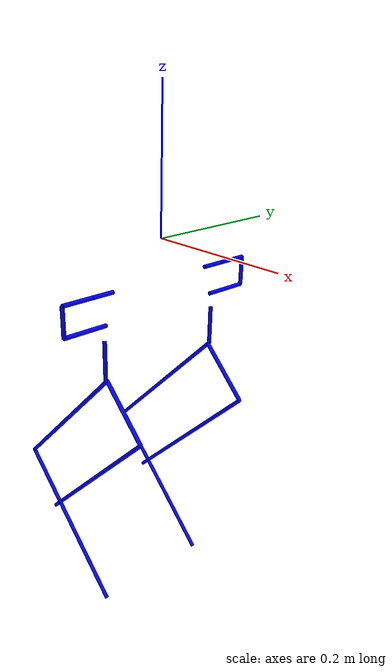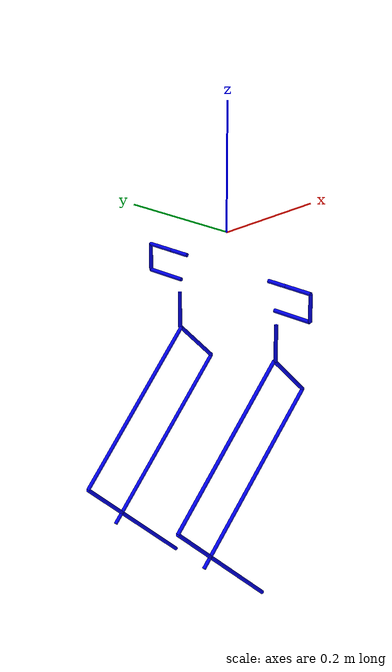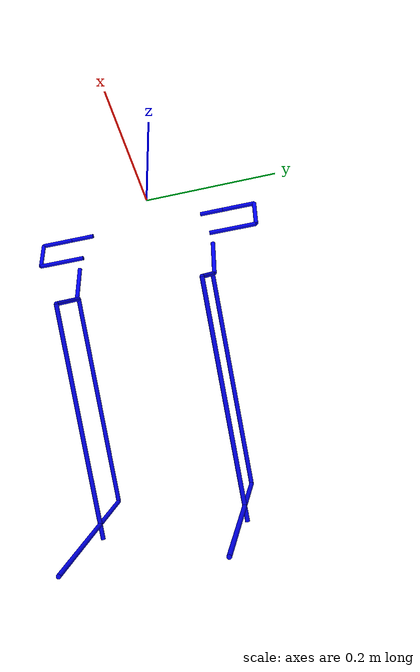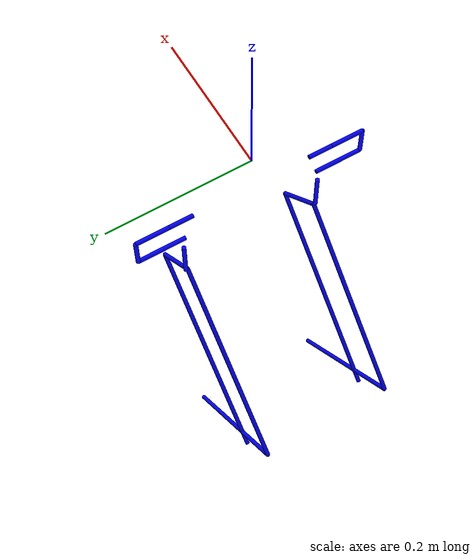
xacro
<?xml version="1.0"?>
<robot name="ALEX" xmlns:xacro="http://ros.org/wiki/xacro">
  <xacro:property name="o_base_to_hip_x" value="0" />
  <xacro:property name="o_base_to_hip_y" value="-0.5" />
  <xacro:property name="o_base_to_hip_z" value="-0.1" />
  <xacro:property name="o_hip_to_knee_x" value="0.1" />
  <xacro:property name="o_hip_to_knee_y" value="0.1" />
  <xacro:property name="o_hip_to_knee_z" value="0.1" />
  <xacro:property name="l_knee_a" value="0.1" />
  <xacro:property name="l_knee_b" value="0.3" />
  <xacro:property name="l_shin_a" value="0.309" />
  <xacro:property name="l_shin_b" value="0.305" />
  <xacro:property name="l_shin_connection" value="0.115" />
  <xacro:property name="l_ankle_connection" value="0.07475" />
  <xacro:property name="l_ankle_a" value="0.02735" />
  <xacro:property name="l_ankle_b" value="0.0432" />
  <xacro:property name="l_ankle_c1" value="0.1493" />
  <xacro:property name="l_ankle_c2" value="0.155795" />
  <xacro:property name="l_foot_a" value="0.055" />
  <xacro:property name="l_foot_b" value="0.055" />

  <!-- Base link to coronal hip -->
  <xacro:property name="l_base_to_sybolic_hip_yz" value="0.101366" />
  <xacro:property name="o_base_to_symbolic_hip_y" value="0.084011" />
  <xacro:property name="o_base_to_symbolic_hip_z" value="-0.056722" />

  <!-- Coronal Hip - Side to Side hip movement -->
  <xacro:property name="l_symbolic_hip_to_coronal_hip_rotor" value="0.0338" />
  <xacro:property name="l_coronal_hip_torque_arm" value="0.046803" />
  <xacro:property name="l_coronal_hip_torque_arm_to_coronal_hip_push_point" value="0.043656" />
  <xacro:property name="l_coronal_hip_push_point_to_coronal_hip_pivot" value="0.067801" />
  <xacro:property name="l_symbolic_hip_to_coronal_hip_pivot" value="0.068139" />
  <xacro:property name="o_symbolic_hip_to_coronal_hip_pivot_z" value="-0.066081" />
  <xacro:property name="o_symbolic_hip_to_coronal_hip_pivot_y" value="0.016618" />
  <xacro:property name="l_coronal_hip_pivot_to_sagittal_hip_pivot" value="0.059613" />
  <xacro:property name="o_coronal_hip_pivot_to_sagittal_hip_pivot_y" value="0.002471" />
  <xacro:property name="o_coronal_hip_pivot_to_sagittal_hip_pivot_z" value="-0.059561" />

  <!-- Sagital Hip - Forward to Back hip movement -->
  <xacro:property name="l_thigh_a" value="0.100" />
  <xacro:property name="l_thigh_b" value="0.300" />
  <xacro:property name="l_shin_a" value="0.3206" />
  <xacro:property name="l_shin_b" value="0.275" />
  <xacro:property name="l_knee_b_to_ankle_connection" value="0.07475" />
  <xacro:property name="l_knee_b_to_shin_connection" value="0.070" />

  <!-- Ankle -->
  <xacro:property name="l_ankle_connection_to_ankle_rotor" value="0.02735" />
  <xacro:property name="l_ankle_torque_arm" value="0.0432" />
  <xacro:property name="l_ankle_linear_actuator_a" value="0.1493" />
  <xacro:property name="l_ankle_linear_actuator_b" value="0.155795" />
  <xacro:property name="l_linear_actuator_b_to_shin_b" value="0.055" />

  <material name="red">
    <color rgba="1 0 0 1"/>
  </material>

  <material name="green">
    <color rgba="0 1 0 1"/>
  </material>

  <material name="blue">
    <color rgba="0 0 1 1"/>
  </material>

  <material name="yellow">
    <color rgba="1 1 0 1"/>
  </material>

  <material name="silver">
    <color rgba="0.73 0.73 0.73 1"/>
  </material>

  <material name="black">
    <color rgba="0 0 0 1"/>
  </material>

  <material name="white">
    <color rgba="1 1 1 1"/>
  </material>

  <xacro:macro name="leg2" params="prefix reflect">
    <!-- HIP -->
    <link name="${prefix}_symbolic_hip_link"/>
    <joint name="base_link_to_${prefix}_symbolic_hip_a" type="continuous">
      <parent link="base_link"/>
      <child link="${prefix}_symbolic_hip_link"/>
      <axis rpy="0 0 0" xyz="0 0 1"/>
      <origin rpy="0 0 0" xyz="0 0 0"/>
    </joint>

    <link name="${prefix}_symbolic_hip_to_coronal_hip_rotor_link">
      <visual>
        <geometry>
          <cylinder length="${l_symbolic_hip_to_coronal_hip_rotor}" radius="0.003"/>
        </geometry>
        <origin rpy="0 ${pi/2} 0" xyz="${l_symbolic_hip_to_coronal_hip_rotor/2} 0 0"/>
        <material name="blue"/>
      </visual>
    </link>
    <joint name="${prefix}_symbolic_hip_to_coronal_hip_rotor" type="continuous">
      <parent link="${prefix}_symbolic_hip_link"/>
      <child link="${prefix}_symbolic_hip_to_coronal_hip_rotor_link"/>
      <axis rpy="0 0 0" xyz="0 0 1"/>
      <origin rpy="${pi/2} 0 ${reflect * pi/2}" xyz="0 ${reflect * o_base_to_symbolic_hip_y} ${o_base_to_symbolic_hip_z}"/>
    </joint>

    <link name="${prefix}_coronal_hip_torque_arm_link">
      <visual>
        <geometry>
          <cylinder length="${l_coronal_hip_torque_arm}" radius="0.003"/>
        </geometry>
        <origin rpy="0 ${pi/2} 0" xyz="${l_coronal_hip_torque_arm/2} 0 0"/>
        <material name="blue"/>
      </visual>
    </link>
    <joint name="${prefix}_coronal_hip_rotor_to_coronal_hip_torque_arm" type="continuous">
      <parent link="${prefix}_symbolic_hip_to_coronal_hip_rotor_link"/>
      <child link="${prefix}_coronal_hip_torque_arm_link"/>
      <axis rpy="0 0 0" xyz="0 0 1"/>
      <origin rpy="0 0 0" xyz="${l_symbolic_hip_to_coronal_hip_rotor} 0 0"/>
    </joint>

    <link name="${prefix}_coronal_hip_pusher_link">
      <visual>
        <geometry>
          <cylinder length="${l_coronal_hip_torque_arm_to_coronal_hip_push_point}" radius="0.003"/>
        </geometry>
        <origin rpy="0 ${pi/2} 0" xyz="${l_coronal_hip_torque_arm_to_coronal_hip_push_point/2} 0 0"/>
        <material name="blue"/>
      </visual>
    </link>
    <joint name="${prefix}_coronal_hip_torque_arm_to_coronal_hip_pusher" type="continuous">
      <parent link="${prefix}_coronal_hip_torque_arm_link"/>
      <child link="${prefix}_coronal_hip_pusher_link"/>
      <axis rpy="0 0 0" xyz="0 0 1"/>
      <origin rpy="0 0 ${-pi/2}" xyz="${l_coronal_hip_torque_arm} 0 0"/>
    </joint>

    <link name="${prefix}_coronal_hip_pusher_to_coronal_hip_pivot_link">
      <visual>
        <geometry>
          <cylinder length="${l_coronal_hip_push_point_to_coronal_hip_pivot}" radius="0.003"/>
        </geometry>
        <origin rpy="0 ${pi/2} 0" xyz="${l_coronal_hip_push_point_to_coronal_hip_pivot/2} 0 0"/>
        <material name="blue"/>
      </visual>
    </link>
    <joint name="${prefix}_coronal_hip_pusher_to_coronal_hip_pivot" type="continuous">
      <parent link="${prefix}_coronal_hip_pusher_link"/>
      <child link="${prefix}_coronal_hip_pusher_to_coronal_hip_pivot_link"/>
      <axis rpy="0 0 0" xyz="0 0 1"/>
      <origin rpy="0 0 ${-pi/2}" xyz="${l_coronal_hip_torque_arm_to_coronal_hip_push_point} 0 0"/>
    </joint>

    <!-- Sagital Hip, Thigh, and Shin -->
    <link name="${prefix}_coronal_hip_pivot_to_sagittal_hip_pivot_link">
      <visual>
        <geometry>
          <cylinder length="${o_coronal_hip_pivot_to_sagittal_hip_pivot_z}" radius="0.003"/>
        </geometry>
        <origin rpy="0 ${pi/2} 0" xyz="${-o_coronal_hip_pivot_to_sagittal_hip_pivot_z/2} 0 0"/>
        <material name="blue"/>
      </visual>
    </link>
    <joint name="${prefix}_corronal_hip_pivot_to_sagittal_pivot" type="continuous">
      <parent link="${prefix}_symbolic_hip_to_coronal_hip_rotor_link"/>
      <child link="${prefix}_coronal_hip_pivot_to_sagittal_hip_pivot_link"/>
      <axis rpy="0 0 0" xyz="0 0 1"/>
      <origin rpy="0 0 ${-pi/2}" xyz="${o_symbolic_hip_to_coronal_hip_pivot_y} ${o_symbolic_hip_to_coronal_hip_pivot_z} 0"/>
    </joint>

    <!-- Symbolic joint to avoid RPY on saggital pivot -->
    <link name="${prefix}_symbolic_sagittal_hip_pivot_link">
    </link>
    <joint name="${prefix}_symbolic_sagittal_hip_pivot" type="continuous">
      <parent link="${prefix}_coronal_hip_pivot_to_sagittal_hip_pivot_link"/>
      <child link="${prefix}_symbolic_sagittal_hip_pivot_link"/>
      <axis rpy="0 0 0" xyz="0 0 1"/>
      <origin rpy="${reflect * pi/2} 0 0" xyz="0 0 0"/>
    </joint>

    <!-- Chain b -->
    <link name="${prefix}_thigh_b_link">
      <visual>
        <geometry>
          <cylinder length="${l_thigh_b}" radius="0.003"/>
        </geometry>
        <origin rpy="0 ${pi/2} 0" xyz="${l_thigh_b/2} 0 0"/>
        <material name="blue"/>
      </visual>
    </link>
    <joint name="${prefix}_sagittal_hip_pivot_to_thigh_b" type="continuous">
      <parent link="${prefix}_symbolic_sagittal_hip_pivot_link"/>
      <child link="${prefix}_thigh_b_link"/>
      <axis rpy="0 0 0" xyz="0 0 1"/>
      <origin rpy="0 0 ${-pi/4}" xyz="${-o_coronal_hip_pivot_to_sagittal_hip_pivot_z} 0 ${reflect * o_coronal_hip_pivot_to_sagittal_hip_pivot_y}"/>
    </joint>

    <link name="${prefix}_shin_b_link">
      <visual>
        <geometry>
          <cylinder length="${l_shin_b}" radius="0.003"/>
        </geometry>
        <origin rpy="0 ${pi/2} 0" xyz="${l_shin_b/2} 0 0"/>
        <material name="blue"/>
      </visual>
    </link>
    <joint name="${prefix}_thigh_b_to_shin_b" type="continuous">
      <parent link="${prefix}_thigh_b_link"/>
      <child link="${prefix}_shin_b_link"/>
      <axis rpy="0 0 0" xyz="0 0 1"/>
      <origin rpy="0 0 ${pi/2}" xyz="${l_thigh_b} 0 0"/>
    </joint>

    <!-- Chain a -->
    <link name="${prefix}_thigh_a_link">
      <visual>
        <geometry>
          <cylinder length="${l_thigh_a}" radius="0.003"/>
        </geometry>
        <origin rpy="0 ${pi/2} 0" xyz="${l_thigh_a/2} 0 0"/>
        <material name="blue"/>
      </visual>
    </link>
    <joint name="${prefix}_thigh_b_to_thigh_a" type="continuous">
      <parent link="${prefix}_thigh_b_link"/>
      <child link="${prefix}_thigh_a_link"/>
      <axis rpy="0 0 0" xyz="0 0 1"/>
      <origin rpy="0 0 ${pi/2}" xyz="0 0 0"/>
    </joint>

    <link name="${prefix}_shin_a_link">
      <visual>
        <geometry>
          <cylinder length="${l_shin_a}" radius="0.003"/>
        </geometry>
        <origin rpy="0 ${pi/2} 0" xyz="${l_shin_a/2} 0 0"/>
        <material name="blue"/>
      </visual>
    </link>
    <joint name="${prefix}_thigh_a_to_shin_a" type="continuous">
      <parent link="${prefix}_thigh_a_link"/>
      <child link="${prefix}_shin_a_link"/>
      <axis rpy="0 0 0" xyz="0 0 1"/>
      <origin rpy="0 0 ${-pi/2}" xyz="${l_thigh_a} 0 0"/>
    </joint>

    <!-- Ankle -->
  </xacro:macro>

  <xacro:macro name="leg" params="prefix reflect">
    <link name="${prefix}_hip_link">

    </link>
    <joint name="base_link_to_${prefix}_hip_link" type="continuous">
      <parent link="base_link"/>
      <child link="${prefix}_hip_link"/>
      <axis rpy="0 0 0" xyz="0 0 1"/>
      <origin rpy="0 ${pi/2} ${pi}" xyz="${o_base_to_hip_x} ${reflect * o_base_to_hip_y} ${o_base_to_hip_z}"/>
    </joint>

    <link name="${prefix}_knee_link_b">
      <visual>
        <geometry>
          <cylinder length="${l_knee_b}" radius="0.003"/>
        </geometry>
        <origin rpy="0 ${pi/2} 0" xyz="${l_knee_b/2} 0 0"/>
        <material name="blue"/>
      </visual>
    </link>
    <joint name="${prefix}_hip_link_to_${prefix}_knee_link_b" type="continuous">
      <parent link="${prefix}_hip_link"/>
      <child link="${prefix}_knee_link_b"/>
      <axis rpy="0 0 0" xyz="0 0 1"/>
      <origin rpy="${pi/2} ${-pi/4} 0" xyz="${o_hip_to_knee_x} ${reflect * o_hip_to_knee_y} ${o_hip_to_knee_z}"/>
    </joint>

    <link name="${prefix}_shin_link_b">
      <visual>
        <geometry>
          <cylinder length="${l_shin_b}" radius="0.003"/>
        </geometry>
        <origin rpy="0 ${pi/2} 0" xyz="${l_shin_b/2} 0 0"/>
        <material name="blue"/>
      </visual>
    </link>
    <joint name="${prefix}_knee_link_b_to_${prefix}_shin_link_b" type="continuous">
      <parent link="${prefix}_knee_link_b"/>
      <child link="${prefix}_shin_link_b"/>
      <axis rpy="0 0 0" xyz="0 0 1"/>
      <origin rpy="0 0 ${-pi/2}" xyz="${l_knee_b} 0 0"/>
    </joint>

    <link name="${prefix}_knee_link_a">
      <visual>
        <geometry>
          <cylinder length="${l_knee_a}" radius="0.003"/>
        </geometry>
        <origin rpy="0 ${pi/2} 0" xyz="${l_knee_a/2} 0 0"/>
        <material name="blue"/>
      </visual>
    </link>
    <joint name="${prefix}_knee_link_b_to_${prefix}_knee_link_a" type="continuous">
      <parent link="${prefix}_knee_link_b"/>
      <child link="${prefix}_knee_link_a"/>
      <axis rpy="0 0 0" xyz="0 0 1"/>
      <origin rpy="0 0 ${-pi/2}" xyz="0 0 0"/>
    </joint>

    <link name="${prefix}_shin_link_a">
      <visual>
        <geometry>
          <cylinder length="${l_shin_a}" radius="0.003"/>
        </geometry>
        <origin rpy="0 ${pi/2} 0" xyz="${l_shin_a/2} 0 0"/>
        <material name="blue"/>
      </visual>
    </link>
    <joint name="${prefix}_knee_link_a_to_${prefix}_shin_link_a" type="continuous">
      <parent link="${prefix}_knee_link_a"/>
      <child link="${prefix}_shin_link_a"/>
      <axis rpy="0 0 0" xyz="0 0 1"/>
      <origin rpy="0 0 ${pi/2}" xyz="${l_knee_a} 0 0"/>
    </joint>

    <link name="${prefix}_shin_link_connection">
      <visual>
        <geometry>
          <cylinder length="0" radius="0.003"/>
        </geometry>
        <origin rpy="0 ${pi/2} 0" xyz="${l_shin_connection/2} 0 0"/>
        <material name="blue"/>
      </visual>
    </link>
    <joint name="${prefix}_shink_link_b_to_${prefix}_shin_link_connection" type="continuous">
      <parent link="${prefix}_shin_link_b"/>
      <child link="${prefix}_shin_link_connection"/>
      <axis rpy="0 0 0" xyz="0 0 1"/>
      <origin rpy="0 0 0" xyz="${l_shin_connection} 0 0"/>
    </joint>

    <link name="${prefix}_foot_link_b">
      <visual>
        <geometry>
          <cylinder length="${l_foot_b}" radius="0.003"/>
        </geometry>
        <origin rpy="0 ${pi/2} 0" xyz="${l_foot_b/2} 0 0"/>
        <material name="blue"/>
      </visual>
    </link>
    <joint name="${prefix}_shin_link_connection_to_${prefix}_foot_link_b" type="continuous">
      <parent link="${prefix}_shin_link_connection"/>
      <child link="${prefix}_foot_link_b"/>
      <axis rpy="0 0 0" xyz="0 0 1"/>
      <origin rpy="0 0 ${-pi/2}" xyz="${l_shin_a - l_shin_connection} 0 0"/>
    </joint>

    <link name="${prefix}_ankle_link_a">
      <visual>
        <geometry>
          <cylinder length="${l_ankle_a}" radius="0.003"/>
        </geometry>
        <origin rpy="0 ${pi/2} 0" xyz="${l_ankle_a/2} 0 0"/>
        <material name="blue"/>
      </visual>
    </link>
    <joint name="${prefix}_shin_link_b_to_${prefix}_ankle_link_a" type="continuous">
      <parent link="${prefix}_shin_link_b"/>
      <child link="${prefix}_ankle_link_a"/>
      <axis rpy="0 0 0" xyz="0 0 1"/>
      <origin rpy="0 0 ${pi/2}" xyz="${l_ankle_connection} 0 0"/>
    </joint>

    <link name="${prefix}_ankle_link_b">
      <visual>
        <geometry>
          <cylinder length="${l_ankle_b}" radius="0.003"/>
        </geometry>
        <origin rpy="0 ${pi/2} 0" xyz="${l_ankle_b/2} 0 0"/>
        <material name="blue"/>
      </visual>
    </link>
    <joint name="${prefix}_ankle_link_a_to_${prefix}_ankle_link_b" type="continuous">
      <parent link="${prefix}_ankle_link_a"/>
      <child link="${prefix}_ankle_link_b"/>
      <axis rpy="0 0 0" xyz="0 0 1"/>
      <origin rpy="0 0 ${-pi/8}" xyz="${l_ankle_a} 0 0"/>
    </joint>

    <link name="${prefix}_ankle_link_c_1">
      <visual>
        <geometry>
          <cylinder length="${l_ankle_c1}" radius="0.003"/>
        </geometry>
        <origin rpy="0 ${pi/2} 0" xyz="${l_ankle_c1/2} 0 0"/>
        <material name="blue"/>
      </visual>
    </link>
    <joint name="${prefix}_ankle_link_b_to_${prefix}_ankle_link_c_1" type="continuous">
      <parent link="${prefix}_ankle_link_b"/>
      <child link="${prefix}_ankle_link_c_1"/>
      <axis rpy="0 0 0" xyz="0 0 1"/>
      <origin rpy="0 0 ${-pi/4}" xyz="${l_ankle_b} 0 0"/>
    </joint>

    <link name="${prefix}_ankle_link_c_2">
      <visual>
        <geometry>
          <cylinder length="${l_ankle_c2}" radius="0.003"/>
        </geometry>
        <origin rpy="0 ${pi/2} 0" xyz="${l_ankle_c2/2} 0 0"/>
        <material name="blue"/>
      </visual>
    </link>
    <joint name="${prefix}_ankle_link_c_1_to_${prefix}_ankle_link_c_2" type="prismatic">
      <limit lower="${-0.0515/2}" upper="${0.0515/2}" effort="1" velocity="1"/>
      <parent link="${prefix}_ankle_link_c_1"/>
      <child link="${prefix}_ankle_link_c_2"/>
      <axis rpy="0 0 0" xyz="1 0 0"/>
      <origin rpy="0 0 0" xyz="${0.0515/2} 0 0"/>
    </joint>

    <link name="${prefix}_foot_link_a">
      <visual>
        <geometry>
          <cylinder length="${l_foot_a}" radius="0.003"/>
        </geometry>
        <origin rpy="0 ${pi/2} 0" xyz="${l_foot_a/2} 0 0"/>
        <material name="blue"/>
      </visual>
    </link>
    <joint name="${prefix}_ankle_link_c_2_to_${prefix}_foot_link_a" type="continuous">
      <parent link="${prefix}_ankle_link_c_2"/>
      <child link="${prefix}_foot_link_a"/>
      <axis rpy="0 0 0" xyz="0 0 1"/>
      <origin rpy="0 0 ${-pi/2}" xyz="${l_ankle_c2} 0 0"/>
    </joint>

  </xacro:macro>

  <link name="base_link"/>
  <xacro:leg2 prefix="right" reflect="-1" />
  <xacro:leg2 prefix="left" reflect="1" />

</robot>
